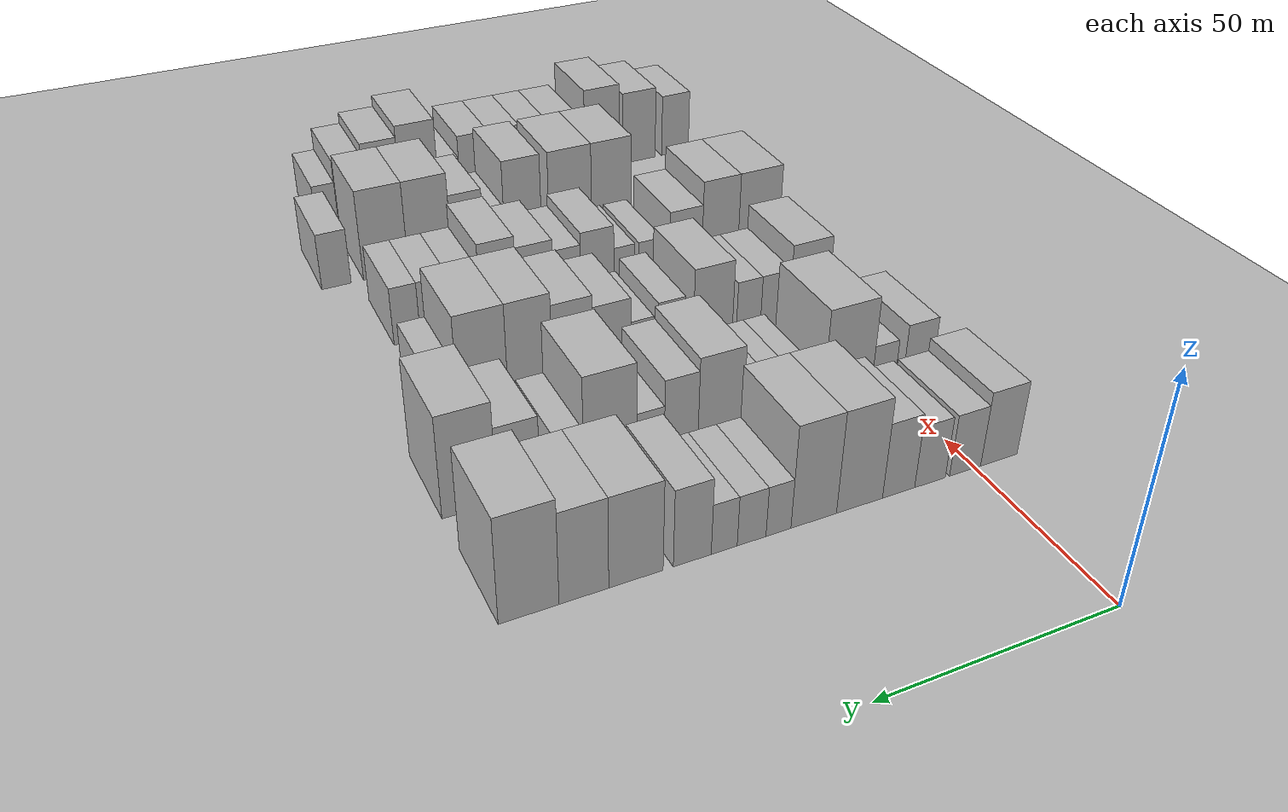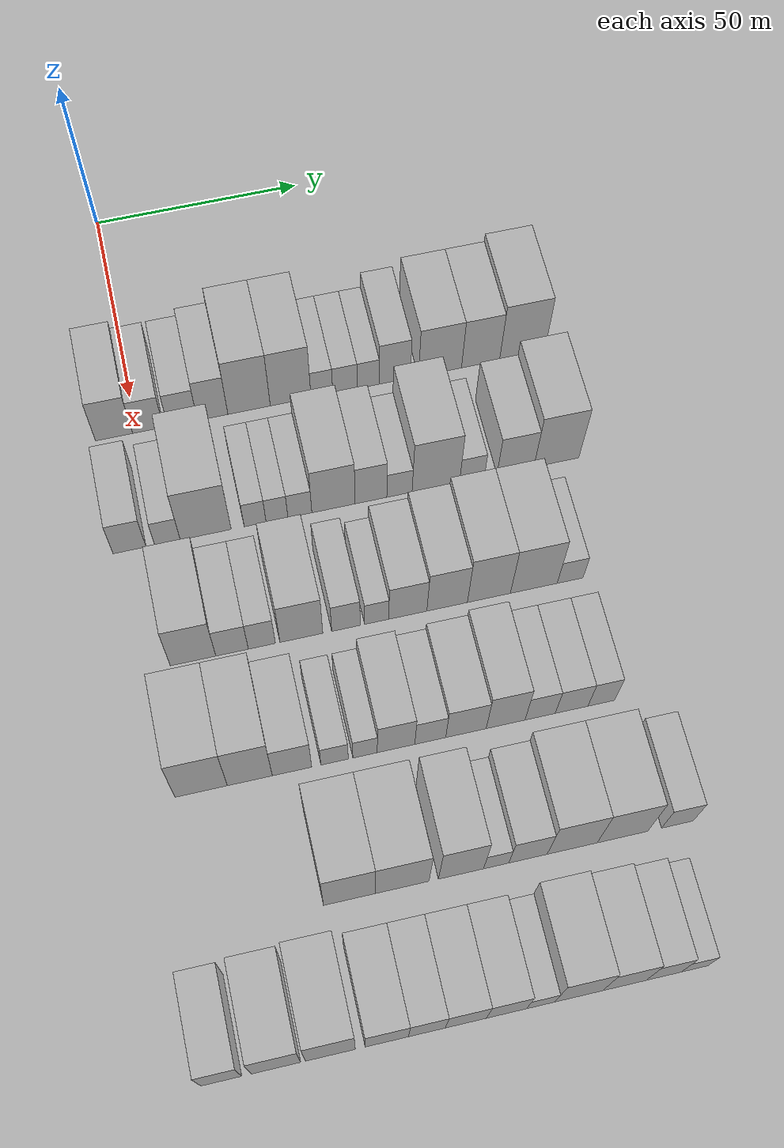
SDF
<sdf version="1.6">
 <world name="default">
  <include><name>ground_plane_1</name><uri>model://HANNAS_ground_plane</uri></include>
  <include>
   <name>ground_plane_2</name>
   <uri>model://HANNAS_ground_plane</uri>
   <pose>100 0 0  0 0 0</pose>
  </include>
  <model name="building_58">
   <static>1</static>
   <pose>50.0000 -5.2370 0 0.000000 0.000000 0.000000</pose>
   <link name="link">
    <pose>0 0 9.00 0 0 0</pose>
    <collision name="collision"><geometry><box><size>20.0000 8.7269 18.0000</size></box></geometry></collision>
    <visual name="visual">
     <cast_shadows>0</cast_shadows>
     <geometry><box><size>20.0000 8.7269 18.0000</size></box></geometry>
     <material>
      <script>
       <uri>model://HANNAS_wall/materials/scripts</uri>
       <uri>model://HANNAS_wall/materials/textures</uri>
       <name>vrc/HANNAS_wall</name>
      </script>
     </material>
    </visual>
   </link>
  </model>
  <model name="building_59">
   <static>1</static>
   <pose>50.0000 2.7610 0 0.000000 0.000000 0.000000</pose>
   <link name="link">
    <pose>0 0 7.50 0 0 0</pose>
    <collision name="collision"><geometry><box><size>20.0000 7.2690 15.0000</size></box></geometry></collision>
    <visual name="visual">
     <cast_shadows>0</cast_shadows>
     <geometry><box><size>20.0000 7.2690 15.0000</size></box></geometry>
     <material>
      <script>
       <uri>model://HANNAS_wall/materials/scripts</uri>
       <uri>model://HANNAS_wall/materials/textures</uri>
       <name>vrc/HANNAS_wall</name>
      </script>
     </material>
    </visual>
   </link>
  </model>
  <model name="building_60">
   <static>1</static>
   <pose>50.0000 10.9094 0 0.000000 0.000000 0.000000</pose>
   <link name="link">
    <pose>0 0 7.50 0 0 0</pose>
    <collision name="collision"><geometry><box><size>20.0000 7.0279 15.0000</size></box></geometry></collision>
    <visual name="visual">
     <cast_shadows>0</cast_shadows>
     <geometry><box><size>20.0000 7.0279 15.0000</size></box></geometry>
     <material>
      <script>
       <uri>model://HANNAS_wall/materials/scripts</uri>
       <uri>model://HANNAS_wall/materials/textures</uri>
       <name>vrc/HANNAS_wall</name>
      </script>
     </material>
    </visual>
   </link>
  </model>
  <model name="building_61">
   <static>1</static>
   <pose>50.0000 18.0346 0 0.000000 0.000000 0.000000</pose>
   <link name="link">
    <pose>0 0 9.00 0 0 0</pose>
    <collision name="collision"><geometry><box><size>20.0000 7.2224 18.0000</size></box></geometry></collision>
    <visual name="visual">
     <cast_shadows>0</cast_shadows>
     <geometry><box><size>20.0000 7.2224 18.0000</size></box></geometry>
     <material>
      <script>
       <uri>model://HANNAS_wall/materials/scripts</uri>
       <uri>model://HANNAS_wall/materials/textures</uri>
       <name>vrc/HANNAS_wall</name>
      </script>
     </material>
    </visual>
   </link>
  </model>
  <model name="building_62">
   <static>1</static>
   <pose>50.0000 26.6964 0 0.000000 0.000000 0.000000</pose>
   <link name="link">
    <pose>0 0 12.00 0 0 0</pose>
    <collision name="collision"><geometry><box><size>20.0000 10.1013 24.0000</size></box></geometry></collision>
    <visual name="visual">
     <cast_shadows>0</cast_shadows>
     <geometry><box><size>20.0000 10.1013 24.0000</size></box></geometry>
     <material>
      <script>
       <uri>model://HANNAS_wall/materials/scripts</uri>
       <uri>model://HANNAS_wall/materials/textures</uri>
       <name>vrc/HANNAS_wall</name>
      </script>
     </material>
    </visual>
   </link>
  </model>
  <model name="building_63">
   <static>1</static>
   <pose>50.0000 36.6137 0 0.000000 0.000000 0.000000</pose>
   <link name="link">
    <pose>0 0 12.00 0 0 0</pose>
    <collision name="collision"><geometry><box><size>20.0000 9.7333 24.0000</size></box></geometry></collision>
    <visual name="visual">
     <cast_shadows>0</cast_shadows>
     <geometry><box><size>20.0000 9.7333 24.0000</size></box></geometry>
     <material>
      <script>
       <uri>model://HANNAS_wall/materials/scripts</uri>
       <uri>model://HANNAS_wall/materials/textures</uri>
       <name>vrc/HANNAS_wall</name>
      </script>
     </material>
    </visual>
   </link>
  </model>
  <model name="building_64">
   <static>1</static>
   <pose>50.0000 44.0931 0 0.000000 0.000000 0.000000</pose>
   <link name="link">
    <pose>0 0 6.00 0 0 0</pose>
    <collision name="collision"><geometry><box><size>20.0000 5.2255 12.0000</size></box></geometry></collision>
    <visual name="visual">
     <cast_shadows>0</cast_shadows>
     <geometry><box><size>20.0000 5.2255 12.0000</size></box></geometry>
     <material>
      <script>
       <uri>model://HANNAS_wall/materials/scripts</uri>
       <uri>model://HANNAS_wall/materials/textures</uri>
       <name>vrc/HANNAS_wall</name>
      </script>
     </material>
    </visual>
   </link>
  </model>
  <model name="building_65">
   <static>1</static>
   <pose>50.0000 49.6679 0 0.000000 0.000000 0.000000</pose>
   <link name="link">
    <pose>0 0 6.00 0 0 0</pose>
    <collision name="collision"><geometry><box><size>20.0000 5.9241 12.0000</size></box></geometry></collision>
    <visual name="visual">
     <cast_shadows>0</cast_shadows>
     <geometry><box><size>20.0000 5.9241 12.0000</size></box></geometry>
     <material>
      <script>
       <uri>model://HANNAS_wall/materials/scripts</uri>
       <uri>model://HANNAS_wall/materials/textures</uri>
       <name>vrc/HANNAS_wall</name>
      </script>
     </material>
    </visual>
   </link>
  </model>
  <model name="building_66">
   <static>1</static>
   <pose>50.0000 55.2623 0 0.000000 0.000000 0.000000</pose>
   <link name="link">
    <pose>0 0 6.00 0 0 0</pose>
    <collision name="collision"><geometry><box><size>20.0000 5.2646 12.0000</size></box></geometry></collision>
    <visual name="visual">
     <cast_shadows>0</cast_shadows>
     <geometry><box><size>20.0000 5.2646 12.0000</size></box></geometry>
     <material>
      <script>
       <uri>model://HANNAS_wall/materials/scripts</uri>
       <uri>model://HANNAS_wall/materials/textures</uri>
       <name>vrc/HANNAS_wall</name>
      </script>
     </material>
    </visual>
   </link>
  </model>
  <model name="building_67">
   <static>1</static>
   <pose>50.0000 61.6664 0 0.000000 0.000000 0.000000</pose>
   <link name="link">
    <pose>0 0 9.00 0 0 0</pose>
    <collision name="collision"><geometry><box><size>20.0000 7.5437 18.0000</size></box></geometry></collision>
    <visual name="visual">
     <cast_shadows>0</cast_shadows>
     <geometry><box><size>20.0000 7.5437 18.0000</size></box></geometry>
     <material>
      <script>
       <uri>model://HANNAS_wall/materials/scripts</uri>
       <uri>model://HANNAS_wall/materials/textures</uri>
       <name>vrc/HANNAS_wall</name>
      </script>
     </material>
    </visual>
   </link>
  </model>
  <model name="building_68">
   <static>1</static>
   <pose>50.0000 72.6750 0 0.000000 0.000000 0.000000</pose>
   <link name="link">
    <pose>0 0 10.50 0 0 0</pose>
    <collision name="collision"><geometry><box><size>20.0000 10.4735 21.0000</size></box></geometry></collision>
    <visual name="visual">
     <cast_shadows>0</cast_shadows>
     <geometry><box><size>20.0000 10.4735 21.0000</size></box></geometry>
     <material>
      <script>
       <uri>model://HANNAS_wall/materials/scripts</uri>
       <uri>model://HANNAS_wall/materials/textures</uri>
       <name>vrc/HANNAS_wall</name>
      </script>
     </material>
    </visual>
   </link>
  </model>
  <model name="building_69">
   <static>1</static>
   <pose>50.0000 82.5582 0 0.000000 0.000000 0.000000</pose>
   <link name="link">
    <pose>0 0 10.50 0 0 0</pose>
    <collision name="collision"><geometry><box><size>20.0000 9.2928 21.0000</size></box></geometry></collision>
    <visual name="visual">
     <cast_shadows>0</cast_shadows>
     <geometry><box><size>20.0000 9.2928 21.0000</size></box></geometry>
     <material>
      <script>
       <uri>model://HANNAS_wall/materials/scripts</uri>
       <uri>model://HANNAS_wall/materials/textures</uri>
       <name>vrc/HANNAS_wall</name>
      </script>
     </material>
    </visual>
   </link>
  </model>
  <model name="building_70">
   <static>1</static>
   <pose>50.0000 92.7431 0 0.000000 0.000000 0.000000</pose>
   <link name="link">
    <pose>0 0 12.00 0 0 0</pose>
    <collision name="collision"><geometry><box><size>20.0000 11.0769 24.0000</size></box></geometry></collision>
    <visual name="visual">
     <cast_shadows>0</cast_shadows>
     <geometry><box><size>20.0000 11.0769 24.0000</size></box></geometry>
     <material>
      <script>
       <uri>model://HANNAS_wall/materials/scripts</uri>
       <uri>model://HANNAS_wall/materials/textures</uri>
       <name>vrc/HANNAS_wall</name>
      </script>
     </material>
    </visual>
   </link>
  </model>
  <model name="building_176">
   <static>1</static>
   <pose>79.0000 -6.3627 0 0.000000 0.000000 0.000000</pose>
   <link name="link">
    <pose>0 0 7.50 0 0 0</pose>
    <collision name="collision"><geometry><box><size>20.0000 7.4978 15.0000</size></box></geometry></collision>
    <visual name="visual">
     <cast_shadows>0</cast_shadows>
     <geometry><box><size>20.0000 7.4978 15.0000</size></box></geometry>
     <material>
      <script>
       <uri>model://HANNAS_wall/materials/scripts</uri>
       <uri>model://HANNAS_wall/materials/textures</uri>
       <name>vrc/HANNAS_wall</name>
      </script>
     </material>
    </visual>
   </link>
  </model>
  <model name="building_177">
   <static>1</static>
   <pose>79.0000 2.2983 0 0.000000 0.000000 0.000000</pose>
   <link name="link">
    <pose>0 0 6.00 0 0 0</pose>
    <collision name="collision"><geometry><box><size>20.0000 5.8242 12.0000</size></box></geometry></collision>
    <visual name="visual">
     <cast_shadows>0</cast_shadows>
     <geometry><box><size>20.0000 5.8242 12.0000</size></box></geometry>
     <material>
      <script>
       <uri>model://HANNAS_wall/materials/scripts</uri>
       <uri>model://HANNAS_wall/materials/textures</uri>
       <name>vrc/HANNAS_wall</name>
      </script>
     </material>
    </visual>
   </link>
  </model>
  <model name="building_178">
   <static>1</static>
   <pose>79.0000 11.0589 0 0.000000 0.000000 0.000000</pose>
   <link name="link">
    <pose>0 0 12.00 0 0 0</pose>
    <collision name="collision"><geometry><box><size>20.0000 11.6969 24.0000</size></box></geometry></collision>
    <visual name="visual">
     <cast_shadows>0</cast_shadows>
     <geometry><box><size>20.0000 11.6969 24.0000</size></box></geometry>
     <material>
      <script>
       <uri>model://HANNAS_wall/materials/scripts</uri>
       <uri>model://HANNAS_wall/materials/textures</uri>
       <name>vrc/HANNAS_wall</name>
      </script>
     </material>
    </visual>
   </link>
  </model>
  <model name="building_179">
   <static>1</static>
   <pose>79.0000 22.4346 0 0.000000 0.000000 0.000000</pose>
   <link name="link">
    <pose>0 0 6.00 0 0 0</pose>
    <collision name="collision"><geometry><box><size>20.0000 5.0546 12.0000</size></box></geometry></collision>
    <visual name="visual">
     <cast_shadows>0</cast_shadows>
     <geometry><box><size>20.0000 5.0546 12.0000</size></box></geometry>
     <material>
      <script>
       <uri>model://HANNAS_wall/materials/scripts</uri>
       <uri>model://HANNAS_wall/materials/textures</uri>
       <name>vrc/HANNAS_wall</name>
      </script>
     </material>
    </visual>
   </link>
  </model>
  <model name="building_180">
   <static>1</static>
   <pose>79.0000 27.4824 0 0.000000 0.000000 0.000000</pose>
   <link name="link">
    <pose>0 0 6.00 0 0 0</pose>
    <collision name="collision"><geometry><box><size>20.0000 5.0411 12.0000</size></box></geometry></collision>
    <visual name="visual">
     <cast_shadows>0</cast_shadows>
     <geometry><box><size>20.0000 5.0411 12.0000</size></box></geometry>
     <material>
      <script>
       <uri>model://HANNAS_wall/materials/scripts</uri>
       <uri>model://HANNAS_wall/materials/textures</uri>
       <name>vrc/HANNAS_wall</name>
      </script>
     </material>
    </visual>
   </link>
  </model>
  <model name="building_181">
   <static>1</static>
   <pose>79.0000 32.7858 0 0.000000 0.000000 0.000000</pose>
   <link name="link">
    <pose>0 0 6.00 0 0 0</pose>
    <collision name="collision"><geometry><box><size>20.0000 5.5657 12.0000</size></box></geometry></collision>
    <visual name="visual">
     <cast_shadows>0</cast_shadows>
     <geometry><box><size>20.0000 5.5657 12.0000</size></box></geometry>
     <material>
      <script>
       <uri>model://HANNAS_wall/materials/scripts</uri>
       <uri>model://HANNAS_wall/materials/textures</uri>
       <name>vrc/HANNAS_wall</name>
      </script>
     </material>
    </visual>
   </link>
  </model>
  <model name="building_182">
   <static>1</static>
   <pose>79.0000 40.6042 0 0.000000 0.000000 0.000000</pose>
   <link name="link">
    <pose>0 0 10.50 0 0 0</pose>
    <collision name="collision"><geometry><box><size>20.0000 10.0710 21.0000</size></box></geometry></collision>
    <visual name="visual">
     <cast_shadows>0</cast_shadows>
     <geometry><box><size>20.0000 10.0710 21.0000</size></box></geometry>
     <material>
      <script>
       <uri>model://HANNAS_wall/materials/scripts</uri>
       <uri>model://HANNAS_wall/materials/textures</uri>
       <name>vrc/HANNAS_wall</name>
      </script>
     </material>
    </visual>
   </link>
  </model>
  <model name="building_183">
   <static>1</static>
   <pose>79.0000 49.3467 0 0.000000 0.000000 0.000000</pose>
   <link name="link">
    <pose>0 0 9.00 0 0 0</pose>
    <collision name="collision"><geometry><box><size>20.0000 7.4141 18.0000</size></box></geometry></collision>
    <visual name="visual">
     <cast_shadows>0</cast_shadows>
     <geometry><box><size>20.0000 7.4141 18.0000</size></box></geometry>
     <material>
      <script>
       <uri>model://HANNAS_wall/materials/scripts</uri>
       <uri>model://HANNAS_wall/materials/textures</uri>
       <name>vrc/HANNAS_wall</name>
      </script>
     </material>
    </visual>
   </link>
  </model>
  <model name="building_184">
   <static>1</static>
   <pose>79.0000 56.0207 0 0.000000 0.000000 0.000000</pose>
   <link name="link">
    <pose>0 0 6.00 0 0 0</pose>
    <collision name="collision"><geometry><box><size>20.0000 5.9337 12.0000</size></box></geometry></collision>
    <visual name="visual">
     <cast_shadows>0</cast_shadows>
     <geometry><box><size>20.0000 5.9337 12.0000</size></box></geometry>
     <material>
      <script>
       <uri>model://HANNAS_wall/materials/scripts</uri>
       <uri>model://HANNAS_wall/materials/textures</uri>
       <name>vrc/HANNAS_wall</name>
      </script>
     </material>
    </visual>
   </link>
  </model>
  <model name="building_185">
   <static>1</static>
   <pose>79.0000 64.5685 0 0.000000 0.000000 0.000000</pose>
   <link name="link">
    <pose>0 0 12.00 0 0 0</pose>
    <collision name="collision"><geometry><box><size>20.0000 11.1620 24.0000</size></box></geometry></collision>
    <visual name="visual">
     <cast_shadows>0</cast_shadows>
     <geometry><box><size>20.0000 11.1620 24.0000</size></box></geometry>
     <material>
      <script>
       <uri>model://HANNAS_wall/materials/scripts</uri>
       <uri>model://HANNAS_wall/materials/textures</uri>
       <name>vrc/HANNAS_wall</name>
      </script>
     </material>
    </visual>
   </link>
  </model>
  <model name="building_186">
   <static>1</static>
   <pose>79.0000 73.0908 0 0.000000 0.000000 0.000000</pose>
   <link name="link">
    <pose>0 0 6.00 0 0 0</pose>
    <collision name="collision"><geometry><box><size>20.0000 5.8826 12.0000</size></box></geometry></collision>
    <visual name="visual">
     <cast_shadows>0</cast_shadows>
     <geometry><box><size>20.0000 5.8826 12.0000</size></box></geometry>
     <material>
      <script>
       <uri>model://HANNAS_wall/materials/scripts</uri>
       <uri>model://HANNAS_wall/materials/textures</uri>
       <name>vrc/HANNAS_wall</name>
      </script>
     </material>
    </visual>
   </link>
  </model>
  <model name="building_187">
   <static>1</static>
   <pose>79.0000 83.4202 0 0.000000 0.000000 0.000000</pose>
   <link name="link">
    <pose>0 0 9.00 0 0 0</pose>
    <collision name="collision"><geometry><box><size>20.0000 8.7762 18.0000</size></box></geometry></collision>
    <visual name="visual">
     <cast_shadows>0</cast_shadows>
     <geometry><box><size>20.0000 8.7762 18.0000</size></box></geometry>
     <material>
      <script>
       <uri>model://HANNAS_wall/materials/scripts</uri>
       <uri>model://HANNAS_wall/materials/textures</uri>
       <name>vrc/HANNAS_wall</name>
      </script>
     </material>
    </visual>
   </link>
  </model>
  <model name="building_188">
   <static>1</static>
   <pose>79.0000 93.1809 0 0.000000 0.000000 0.000000</pose>
   <link name="link">
    <pose>0 0 12.00 0 0 0</pose>
    <collision name="collision"><geometry><box><size>20.0000 10.7453 24.0000</size></box></geometry></collision>
    <visual name="visual">
     <cast_shadows>0</cast_shadows>
     <geometry><box><size>20.0000 10.7453 24.0000</size></box></geometry>
     <material>
      <script>
       <uri>model://HANNAS_wall/materials/scripts</uri>
       <uri>model://HANNAS_wall/materials/textures</uri>
       <name>vrc/HANNAS_wall</name>
      </script>
     </material>
    </visual>
   </link>
  </model>
  <model name="building_293">
   <static>1</static>
   <pose>108.0000 2.9154 0 0.000000 0.000000 0.000000</pose>
   <link name="link">
    <pose>0 0 10.50 0 0 0</pose>
    <collision name="collision"><geometry><box><size>20.0000 10.0938 21.0000</size></box></geometry></collision>
    <visual name="visual">
     <cast_shadows>0</cast_shadows>
     <geometry><box><size>20.0000 10.0938 21.0000</size></box></geometry>
     <material>
      <script>
       <uri>model://HANNAS_wall/materials/scripts</uri>
       <uri>model://HANNAS_wall/materials/textures</uri>
       <name>vrc/HANNAS_wall</name>
      </script>
     </material>
    </visual>
   </link>
  </model>
  <model name="building_294">
   <static>1</static>
   <pose>108.0000 11.5925 0 0.000000 0.000000 0.000000</pose>
   <link name="link">
    <pose>0 0 7.50 0 0 0</pose>
    <collision name="collision"><geometry><box><size>20.0000 7.2604 15.0000</size></box></geometry></collision>
    <visual name="visual">
     <cast_shadows>0</cast_shadows>
     <geometry><box><size>20.0000 7.2604 15.0000</size></box></geometry>
     <material>
      <script>
       <uri>model://HANNAS_wall/materials/scripts</uri>
       <uri>model://HANNAS_wall/materials/textures</uri>
       <name>vrc/HANNAS_wall</name>
      </script>
     </material>
    </visual>
   </link>
  </model>
  <model name="building_295">
   <static>1</static>
   <pose>108.0000 18.2490 0 0.000000 0.000000 0.000000</pose>
   <link name="link">
    <pose>0 0 7.50 0 0 0</pose>
    <collision name="collision"><geometry><box><size>20.0000 6.0526 15.0000</size></box></geometry></collision>
    <visual name="visual">
     <cast_shadows>0</cast_shadows>
     <geometry><box><size>20.0000 6.0526 15.0000</size></box></geometry>
     <material>
      <script>
       <uri>model://HANNAS_wall/materials/scripts</uri>
       <uri>model://HANNAS_wall/materials/textures</uri>
       <name>vrc/HANNAS_wall</name>
      </script>
     </material>
    </visual>
   </link>
  </model>
  <model name="building_296">
   <static>1</static>
   <pose>108.0000 27.0882 0 0.000000 0.000000 0.000000</pose>
   <link name="link">
    <pose>0 0 10.50 0 0 0</pose>
    <collision name="collision"><geometry><box><size>20.0000 9.6259 21.0000</size></box></geometry></collision>
    <visual name="visual">
     <cast_shadows>0</cast_shadows>
     <geometry><box><size>20.0000 9.6259 21.0000</size></box></geometry>
     <material>
      <script>
       <uri>model://HANNAS_wall/materials/scripts</uri>
       <uri>model://HANNAS_wall/materials/textures</uri>
       <name>vrc/HANNAS_wall</name>
      </script>
     </material>
    </visual>
   </link>
  </model>
  <model name="building_297">
   <static>1</static>
   <pose>108.0000 37.1175 0 0.000000 0.000000 0.000000</pose>
   <link name="link">
    <pose>0 0 7.50 0 0 0</pose>
    <collision name="collision"><geometry><box><size>20.0000 6.4328 15.0000</size></box></geometry></collision>
    <visual name="visual">
     <cast_shadows>0</cast_shadows>
     <geometry><box><size>20.0000 6.4328 15.0000</size></box></geometry>
     <material>
      <script>
       <uri>model://HANNAS_wall/materials/scripts</uri>
       <uri>model://HANNAS_wall/materials/textures</uri>
       <name>vrc/HANNAS_wall</name>
      </script>
     </material>
    </visual>
   </link>
  </model>
  <model name="building_298">
   <static>1</static>
   <pose>108.0000 44.0546 0 0.000000 0.000000 0.000000</pose>
   <link name="link">
    <pose>0 0 6.00 0 0 0</pose>
    <collision name="collision"><geometry><box><size>20.0000 5.4414 12.0000</size></box></geometry></collision>
    <visual name="visual">
     <cast_shadows>0</cast_shadows>
     <geometry><box><size>20.0000 5.4414 12.0000</size></box></geometry>
     <material>
      <script>
       <uri>model://HANNAS_wall/materials/scripts</uri>
       <uri>model://HANNAS_wall/materials/textures</uri>
       <name>vrc/HANNAS_wall</name>
      </script>
     </material>
    </visual>
   </link>
  </model>
  <model name="building_299">
   <static>1</static>
   <pose>108.0000 51.1132 0 0.000000 0.000000 0.000000</pose>
   <link name="link">
    <pose>0 0 9.00 0 0 0</pose>
    <collision name="collision"><geometry><box><size>20.0000 8.6758 18.0000</size></box></geometry></collision>
    <visual name="visual">
     <cast_shadows>0</cast_shadows>
     <geometry><box><size>20.0000 8.6758 18.0000</size></box></geometry>
     <material>
      <script>
       <uri>model://HANNAS_wall/materials/scripts</uri>
       <uri>model://HANNAS_wall/materials/textures</uri>
       <name>vrc/HANNAS_wall</name>
      </script>
     </material>
    </visual>
   </link>
  </model>
  <model name="building_300">
   <static>1</static>
   <pose>108.0000 60.0744 0 0.000000 0.000000 0.000000</pose>
   <link name="link">
    <pose>0 0 10.50 0 0 0</pose>
    <collision name="collision"><geometry><box><size>20.0000 9.2464 21.0000</size></box></geometry></collision>
    <visual name="visual">
     <cast_shadows>0</cast_shadows>
     <geometry><box><size>20.0000 9.2464 21.0000</size></box></geometry>
     <material>
      <script>
       <uri>model://HANNAS_wall/materials/scripts</uri>
       <uri>model://HANNAS_wall/materials/textures</uri>
       <name>vrc/HANNAS_wall</name>
      </script>
     </material>
    </visual>
   </link>
  </model>
  <model name="building_301">
   <static>1</static>
   <pose>108.0000 69.6372 0 0.000000 0.000000 0.000000</pose>
   <link name="link">
    <pose>0 0 12.00 0 0 0</pose>
    <collision name="collision"><geometry><box><size>20.0000 9.8793 24.0000</size></box></geometry></collision>
    <visual name="visual">
     <cast_shadows>0</cast_shadows>
     <geometry><box><size>20.0000 9.8793 24.0000</size></box></geometry>
     <material>
      <script>
       <uri>model://HANNAS_wall/materials/scripts</uri>
       <uri>model://HANNAS_wall/materials/textures</uri>
       <name>vrc/HANNAS_wall</name>
      </script>
     </material>
    </visual>
   </link>
  </model>
  <model name="building_302">
   <static>1</static>
   <pose>108.0000 79.9769 0 0.000000 0.000000 0.000000</pose>
   <link name="link">
    <pose>0 0 12.00 0 0 0</pose>
    <collision name="collision"><geometry><box><size>20.0000 10.8000 24.0000</size></box></geometry></collision>
    <visual name="visual">
     <cast_shadows>0</cast_shadows>
     <geometry><box><size>20.0000 10.8000 24.0000</size></box></geometry>
     <material>
      <script>
       <uri>model://HANNAS_wall/materials/scripts</uri>
       <uri>model://HANNAS_wall/materials/textures</uri>
       <name>vrc/HANNAS_wall</name>
      </script>
     </material>
    </visual>
   </link>
  </model>
  <model name="building_303">
   <static>1</static>
   <pose>108.0000 88.3664 0 0.000000 0.000000 0.000000</pose>
   <link name="link">
    <pose>0 0 6.00 0 0 0</pose>
    <collision name="collision"><geometry><box><size>20.0000 5.9791 12.0000</size></box></geometry></collision>
    <visual name="visual">
     <cast_shadows>0</cast_shadows>
     <geometry><box><size>20.0000 5.9791 12.0000</size></box></geometry>
     <material>
      <script>
       <uri>model://HANNAS_wall/materials/scripts</uri>
       <uri>model://HANNAS_wall/materials/textures</uri>
       <name>vrc/HANNAS_wall</name>
      </script>
     </material>
    </visual>
   </link>
  </model>
  <model name="building_408">
   <static>1</static>
   <pose>137.0000 -0.5355 0 0.000000 0.000000 0.000000</pose>
   <link name="link">
    <pose>0 0 12.00 0 0 0</pose>
    <collision name="collision"><geometry><box><size>20.0000 11.2154 24.0000</size></box></geometry></collision>
    <visual name="visual">
     <cast_shadows>0</cast_shadows>
     <geometry><box><size>20.0000 11.2154 24.0000</size></box></geometry>
     <material>
      <script>
       <uri>model://HANNAS_wall/materials/scripts</uri>
       <uri>model://HANNAS_wall/materials/textures</uri>
       <name>vrc/HANNAS_wall</name>
      </script>
     </material>
    </visual>
   </link>
  </model>
  <model name="building_409">
   <static>1</static>
   <pose>137.0000 9.9177 0 0.000000 0.000000 0.000000</pose>
   <link name="link">
    <pose>0 0 12.00 0 0 0</pose>
    <collision name="collision"><geometry><box><size>20.0000 9.6911 24.0000</size></box></geometry></collision>
    <visual name="visual">
     <cast_shadows>0</cast_shadows>
     <geometry><box><size>20.0000 9.6911 24.0000</size></box></geometry>
     <material>
      <script>
       <uri>model://HANNAS_wall/materials/scripts</uri>
       <uri>model://HANNAS_wall/materials/textures</uri>
       <name>vrc/HANNAS_wall</name>
      </script>
     </material>
    </visual>
   </link>
  </model>
  <model name="building_410">
   <static>1</static>
   <pose>137.0000 19.0268 0 0.000000 0.000000 0.000000</pose>
   <link name="link">
    <pose>0 0 9.00 0 0 0</pose>
    <collision name="collision"><geometry><box><size>20.0000 8.5270 18.0000</size></box></geometry></collision>
    <visual name="visual">
     <cast_shadows>0</cast_shadows>
     <geometry><box><size>20.0000 8.5270 18.0000</size></box></geometry>
     <material>
      <script>
       <uri>model://HANNAS_wall/materials/scripts</uri>
       <uri>model://HANNAS_wall/materials/textures</uri>
       <name>vrc/HANNAS_wall</name>
      </script>
     </material>
    </visual>
   </link>
  </model>
  <model name="building_411">
   <static>1</static>
   <pose>137.0000 28.2692 0 0.000000 0.000000 0.000000</pose>
   <link name="link">
    <pose>0 0 6.00 0 0 0</pose>
    <collision name="collision"><geometry><box><size>20.0000 5.9578 12.0000</size></box></geometry></collision>
    <visual name="visual">
     <cast_shadows>0</cast_shadows>
     <geometry><box><size>20.0000 5.9578 12.0000</size></box></geometry>
     <material>
      <script>
       <uri>model://HANNAS_wall/materials/scripts</uri>
       <uri>model://HANNAS_wall/materials/textures</uri>
       <name>vrc/HANNAS_wall</name>
      </script>
     </material>
    </visual>
   </link>
  </model>
  <model name="building_412">
   <static>1</static>
   <pose>137.0000 34.9049 0 0.000000 0.000000 0.000000</pose>
   <link name="link">
    <pose>0 0 6.00 0 0 0</pose>
    <collision name="collision"><geometry><box><size>20.0000 5.3135 12.0000</size></box></geometry></collision>
    <visual name="visual">
     <cast_shadows>0</cast_shadows>
     <geometry><box><size>20.0000 5.3135 12.0000</size></box></geometry>
     <material>
      <script>
       <uri>model://HANNAS_wall/materials/scripts</uri>
       <uri>model://HANNAS_wall/materials/textures</uri>
       <name>vrc/HANNAS_wall</name>
      </script>
     </material>
    </visual>
   </link>
  </model>
  <model name="building_413">
   <static>1</static>
   <pose>137.0000 41.6813 0 0.000000 0.000000 0.000000</pose>
   <link name="link">
    <pose>0 0 9.00 0 0 0</pose>
    <collision name="collision"><geometry><box><size>20.0000 8.2393 18.0000</size></box></geometry></collision>
    <visual name="visual">
     <cast_shadows>0</cast_shadows>
     <geometry><box><size>20.0000 8.2393 18.0000</size></box></geometry>
     <material>
      <script>
       <uri>model://HANNAS_wall/materials/scripts</uri>
       <uri>model://HANNAS_wall/materials/textures</uri>
       <name>vrc/HANNAS_wall</name>
      </script>
     </material>
    </visual>
   </link>
  </model>
  <model name="building_414">
   <static>1</static>
   <pose>137.0000 49.1995 0 0.000000 0.000000 0.000000</pose>
   <link name="link">
    <pose>0 0 7.50 0 0 0</pose>
    <collision name="collision"><geometry><box><size>20.0000 6.7970 15.0000</size></box></geometry></collision>
    <visual name="visual">
     <cast_shadows>0</cast_shadows>
     <geometry><box><size>20.0000 6.7970 15.0000</size></box></geometry>
     <material>
      <script>
       <uri>model://HANNAS_wall/materials/scripts</uri>
       <uri>model://HANNAS_wall/materials/textures</uri>
       <name>vrc/HANNAS_wall</name>
      </script>
     </material>
    </visual>
   </link>
  </model>
  <model name="building_415">
   <static>1</static>
   <pose>137.0000 57.0575 0 0.000000 0.000000 0.000000</pose>
   <link name="link">
    <pose>0 0 9.00 0 0 0</pose>
    <collision name="collision"><geometry><box><size>20.0000 8.9189 18.0000</size></box></geometry></collision>
    <visual name="visual">
     <cast_shadows>0</cast_shadows>
     <geometry><box><size>20.0000 8.9189 18.0000</size></box></geometry>
     <material>
      <script>
       <uri>model://HANNAS_wall/materials/scripts</uri>
       <uri>model://HANNAS_wall/materials/textures</uri>
       <name>vrc/HANNAS_wall</name>
      </script>
     </material>
    </visual>
   </link>
  </model>
  <model name="building_416">
   <static>1</static>
   <pose>137.0000 65.8321 0 0.000000 0.000000 0.000000</pose>
   <link name="link">
    <pose>0 0 10.50 0 0 0</pose>
    <collision name="collision"><geometry><box><size>20.0000 8.6302 21.0000</size></box></geometry></collision>
    <visual name="visual">
     <cast_shadows>0</cast_shadows>
     <geometry><box><size>20.0000 8.6302 21.0000</size></box></geometry>
     <material>
      <script>
       <uri>model://HANNAS_wall/materials/scripts</uri>
       <uri>model://HANNAS_wall/materials/textures</uri>
       <name>vrc/HANNAS_wall</name>
      </script>
     </material>
    </visual>
   </link>
  </model>
  <model name="building_417">
   <static>1</static>
   <pose>137.0000 73.5296 0 0.000000 0.000000 0.000000</pose>
   <link name="link">
    <pose>0 0 7.50 0 0 0</pose>
    <collision name="collision"><geometry><box><size>20.0000 6.7648 15.0000</size></box></geometry></collision>
    <visual name="visual">
     <cast_shadows>0</cast_shadows>
     <geometry><box><size>20.0000 6.7648 15.0000</size></box></geometry>
     <material>
      <script>
       <uri>model://HANNAS_wall/materials/scripts</uri>
       <uri>model://HANNAS_wall/materials/textures</uri>
       <name>vrc/HANNAS_wall</name>
      </script>
     </material>
    </visual>
   </link>
  </model>
  <model name="building_418">
   <static>1</static>
   <pose>137.0000 80.5659 0 0.000000 0.000000 0.000000</pose>
   <link name="link">
    <pose>0 0 7.50 0 0 0</pose>
    <collision name="collision"><geometry><box><size>20.0000 7.3079 15.0000</size></box></geometry></collision>
    <visual name="visual">
     <cast_shadows>0</cast_shadows>
     <geometry><box><size>20.0000 7.3079 15.0000</size></box></geometry>
     <material>
      <script>
       <uri>model://HANNAS_wall/materials/scripts</uri>
       <uri>model://HANNAS_wall/materials/textures</uri>
       <name>vrc/HANNAS_wall</name>
      </script>
     </material>
    </visual>
   </link>
  </model>
  <model name="building_419">
   <static>1</static>
   <pose>137.0000 87.2375 0 0.000000 0.000000 0.000000</pose>
   <link name="link">
    <pose>0 0 7.50 0 0 0</pose>
    <collision name="collision"><geometry><box><size>20.0000 6.0353 15.0000</size></box></geometry></collision>
    <visual name="visual">
     <cast_shadows>0</cast_shadows>
     <geometry><box><size>20.0000 6.0353 15.0000</size></box></geometry>
     <material>
      <script>
       <uri>model://HANNAS_wall/materials/scripts</uri>
       <uri>model://HANNAS_wall/materials/textures</uri>
       <name>vrc/HANNAS_wall</name>
      </script>
     </material>
    </visual>
   </link>
  </model>
  <model name="building_523">
   <static>1</static>
   <pose>166.0000 25.0873 0 0.000000 0.000000 0.000000</pose>
   <link name="link">
    <pose>0 0 12.00 0 0 0</pose>
    <collision name="collision"><geometry><box><size>20.0000 10.9031 24.0000</size></box></geometry></collision>
    <visual name="visual">
     <cast_shadows>0</cast_shadows>
     <geometry><box><size>20.0000 10.9031 24.0000</size></box></geometry>
     <material>
      <script>
       <uri>model://HANNAS_wall/materials/scripts</uri>
       <uri>model://HANNAS_wall/materials/textures</uri>
       <name>vrc/HANNAS_wall</name>
      </script>
     </material>
    </visual>
   </link>
  </model>
  <model name="building_524">
   <static>1</static>
   <pose>166.0000 36.2220 0 0.000000 0.000000 0.000000</pose>
   <link name="link">
    <pose>0 0 12.00 0 0 0</pose>
    <collision name="collision"><geometry><box><size>20.0000 11.3662 24.0000</size></box></geometry></collision>
    <visual name="visual">
     <cast_shadows>0</cast_shadows>
     <geometry><box><size>20.0000 11.3662 24.0000</size></box></geometry>
     <material>
      <script>
       <uri>model://HANNAS_wall/materials/scripts</uri>
       <uri>model://HANNAS_wall/materials/textures</uri>
       <name>vrc/HANNAS_wall</name>
      </script>
     </material>
    </visual>
   </link>
  </model>
  <model name="building_525">
   <static>1</static>
   <pose>166.0000 48.7159 0 0.000000 0.000000 0.000000</pose>
   <link name="link">
    <pose>0 0 12.00 0 0 0</pose>
    <collision name="collision"><geometry><box><size>20.0000 9.6216 24.0000</size></box></geometry></collision>
    <visual name="visual">
     <cast_shadows>0</cast_shadows>
     <geometry><box><size>20.0000 9.6216 24.0000</size></box></geometry>
     <material>
      <script>
       <uri>model://HANNAS_wall/materials/scripts</uri>
       <uri>model://HANNAS_wall/materials/textures</uri>
       <name>vrc/HANNAS_wall</name>
      </script>
     </material>
    </visual>
   </link>
  </model>
  <model name="building_526">
   <static>1</static>
   <pose>166.0000 56.2250 0 0.000000 0.000000 0.000000</pose>
   <link name="link">
    <pose>0 0 6.00 0 0 0</pose>
    <collision name="collision"><geometry><box><size>20.0000 5.3967 12.0000</size></box></geometry></collision>
    <visual name="visual">
     <cast_shadows>0</cast_shadows>
     <geometry><box><size>20.0000 5.3967 12.0000</size></box></geometry>
     <material>
      <script>
       <uri>model://HANNAS_wall/materials/scripts</uri>
       <uri>model://HANNAS_wall/materials/textures</uri>
       <name>vrc/HANNAS_wall</name>
      </script>
     </material>
    </visual>
   </link>
  </model>
  <model name="building_527">
   <static>1</static>
   <pose>166.0000 63.0494 0 0.000000 0.000000 0.000000</pose>
   <link name="link">
    <pose>0 0 9.00 0 0 0</pose>
    <collision name="collision"><geometry><box><size>20.0000 8.2521 18.0000</size></box></geometry></collision>
    <visual name="visual">
     <cast_shadows>0</cast_shadows>
     <geometry><box><size>20.0000 8.2521 18.0000</size></box></geometry>
     <material>
      <script>
       <uri>model://HANNAS_wall/materials/scripts</uri>
       <uri>model://HANNAS_wall/materials/textures</uri>
       <name>vrc/HANNAS_wall</name>
      </script>
     </material>
    </visual>
   </link>
  </model>
  <model name="building_528">
   <static>1</static>
   <pose>166.0000 72.5929 0 0.000000 0.000000 0.000000</pose>
   <link name="link">
    <pose>0 0 12.00 0 0 0</pose>
    <collision name="collision"><geometry><box><size>20.0000 10.8349 24.0000</size></box></geometry></collision>
    <visual name="visual">
     <cast_shadows>0</cast_shadows>
     <geometry><box><size>20.0000 10.8349 24.0000</size></box></geometry>
     <material>
      <script>
       <uri>model://HANNAS_wall/materials/scripts</uri>
       <uri>model://HANNAS_wall/materials/textures</uri>
       <name>vrc/HANNAS_wall</name>
      </script>
     </material>
    </visual>
   </link>
  </model>
  <model name="building_529">
   <static>1</static>
   <pose>166.0000 83.4962 0 0.000000 0.000000 0.000000</pose>
   <link name="link">
    <pose>0 0 12.00 0 0 0</pose>
    <collision name="collision"><geometry><box><size>20.0000 10.9718 24.0000</size></box></geometry></collision>
    <visual name="visual">
     <cast_shadows>0</cast_shadows>
     <geometry><box><size>20.0000 10.9718 24.0000</size></box></geometry>
     <material>
      <script>
       <uri>model://HANNAS_wall/materials/scripts</uri>
       <uri>model://HANNAS_wall/materials/textures</uri>
       <name>vrc/HANNAS_wall</name>
      </script>
     </material>
    </visual>
   </link>
  </model>
  <model name="building_530">
   <static>1</static>
   <pose>166.0000 95.4577 0 0.000000 0.000000 0.000000</pose>
   <link name="link">
    <pose>0 0 7.50 0 0 0</pose>
    <collision name="collision"><geometry><box><size>20.0000 6.9513 15.0000</size></box></geometry></collision>
    <visual name="visual">
     <cast_shadows>0</cast_shadows>
     <geometry><box><size>20.0000 6.9513 15.0000</size></box></geometry>
     <material>
      <script>
       <uri>model://HANNAS_wall/materials/scripts</uri>
       <uri>model://HANNAS_wall/materials/textures</uri>
       <name>vrc/HANNAS_wall</name>
      </script>
     </material>
    </visual>
   </link>
  </model>
  <model name="building_637">
   <static>1</static>
   <pose>195.0000 -7.1275 0 0.000000 0.000000 0.000000</pose>
   <link name="link">
    <pose>0 0 9.00 0 0 0</pose>
    <collision name="collision"><geometry><box><size>20.0000 8.1719 18.0000</size></box></geometry></collision>
    <visual name="visual">
     <cast_shadows>0</cast_shadows>
     <geometry><box><size>20.0000 8.1719 18.0000</size></box></geometry>
     <material>
      <script>
       <uri>model://HANNAS_wall/materials/scripts</uri>
       <uri>model://HANNAS_wall/materials/textures</uri>
       <name>vrc/HANNAS_wall</name>
      </script>
     </material>
    </visual>
   </link>
  </model>
  <model name="building_638">
   <static>1</static>
   <pose>195.0000 3.8910 0 0.000000 0.000000 0.000000</pose>
   <link name="link">
    <pose>0 0 10.50 0 0 0</pose>
    <collision name="collision"><geometry><box><size>20.0000 9.8652 21.0000</size></box></geometry></collision>
    <visual name="visual">
     <cast_shadows>0</cast_shadows>
     <geometry><box><size>20.0000 9.8652 21.0000</size></box></geometry>
     <material>
      <script>
       <uri>model://HANNAS_wall/materials/scripts</uri>
       <uri>model://HANNAS_wall/materials/textures</uri>
       <name>vrc/HANNAS_wall</name>
      </script>
     </material>
    </visual>
   </link>
  </model>
  <model name="building_639">
   <static>1</static>
   <pose>195.0000 14.8460 0 0.000000 0.000000 0.000000</pose>
   <link name="link">
    <pose>0 0 12.00 0 0 0</pose>
    <collision name="collision"><geometry><box><size>20.0000 10.0447 24.0000</size></box></geometry></collision>
    <visual name="visual">
     <cast_shadows>0</cast_shadows>
     <geometry><box><size>20.0000 10.0447 24.0000</size></box></geometry>
     <material>
      <script>
       <uri>model://HANNAS_wall/materials/scripts</uri>
       <uri>model://HANNAS_wall/materials/textures</uri>
       <name>vrc/HANNAS_wall</name>
      </script>
     </material>
    </visual>
   </link>
  </model>
  <model name="building_640">
   <static>1</static>
   <pose>195.0000 26.2764 0 0.000000 0.000000 0.000000</pose>
   <link name="link">
    <pose>0 0 9.00 0 0 0</pose>
    <collision name="collision"><geometry><box><size>20.0000 8.8162 18.0000</size></box></geometry></collision>
    <visual name="visual">
     <cast_shadows>0</cast_shadows>
     <geometry><box><size>20.0000 8.8162 18.0000</size></box></geometry>
     <material>
      <script>
       <uri>model://HANNAS_wall/materials/scripts</uri>
       <uri>model://HANNAS_wall/materials/textures</uri>
       <name>vrc/HANNAS_wall</name>
      </script>
     </material>
    </visual>
   </link>
  </model>
  <model name="building_641">
   <static>1</static>
   <pose>195.0000 34.4512 0 0.000000 0.000000 0.000000</pose>
   <link name="link">
    <pose>0 0 9.00 0 0 0</pose>
    <collision name="collision"><geometry><box><size>20.0000 7.5334 18.0000</size></box></geometry></collision>
    <visual name="visual">
     <cast_shadows>0</cast_shadows>
     <geometry><box><size>20.0000 7.5334 18.0000</size></box></geometry>
     <material>
      <script>
       <uri>model://HANNAS_wall/materials/scripts</uri>
       <uri>model://HANNAS_wall/materials/textures</uri>
       <name>vrc/HANNAS_wall</name>
      </script>
     </material>
    </visual>
   </link>
  </model>
  <model name="building_642">
   <static>1</static>
   <pose>195.0000 42.4496 0 0.000000 0.000000 0.000000</pose>
   <link name="link">
    <pose>0 0 9.00 0 0 0</pose>
    <collision name="collision"><geometry><box><size>20.0000 8.4633 18.0000</size></box></geometry></collision>
    <visual name="visual">
     <cast_shadows>0</cast_shadows>
     <geometry><box><size>20.0000 8.4633 18.0000</size></box></geometry>
     <material>
      <script>
       <uri>model://HANNAS_wall/materials/scripts</uri>
       <uri>model://HANNAS_wall/materials/textures</uri>
       <name>vrc/HANNAS_wall</name>
      </script>
     </material>
    </visual>
   </link>
  </model>
  <model name="building_643">
   <static>1</static>
   <pose>195.0000 50.8114 0 0.000000 0.000000 0.000000</pose>
   <link name="link">
    <pose>0 0 9.00 0 0 0</pose>
    <collision name="collision"><geometry><box><size>20.0000 8.2604 18.0000</size></box></geometry></collision>
    <visual name="visual">
     <cast_shadows>0</cast_shadows>
     <geometry><box><size>20.0000 8.2604 18.0000</size></box></geometry>
     <material>
      <script>
       <uri>model://HANNAS_wall/materials/scripts</uri>
       <uri>model://HANNAS_wall/materials/textures</uri>
       <name>vrc/HANNAS_wall</name>
      </script>
     </material>
    </visual>
   </link>
  </model>
  <model name="building_644">
   <static>1</static>
   <pose>195.0000 57.8366 0 0.000000 0.000000 0.000000</pose>
   <link name="link">
    <pose>0 0 6.00 0 0 0</pose>
    <collision name="collision"><geometry><box><size>20.0000 5.7901 12.0000</size></box></geometry></collision>
    <visual name="visual">
     <cast_shadows>0</cast_shadows>
     <geometry><box><size>20.0000 5.7901 12.0000</size></box></geometry>
     <material>
      <script>
       <uri>model://HANNAS_wall/materials/scripts</uri>
       <uri>model://HANNAS_wall/materials/textures</uri>
       <name>vrc/HANNAS_wall</name>
      </script>
     </material>
    </visual>
   </link>
  </model>
  <model name="building_645">
   <static>1</static>
   <pose>195.0000 65.7801 0 0.000000 0.000000 0.000000</pose>
   <link name="link">
    <pose>0 0 12.00 0 0 0</pose>
    <collision name="collision"><geometry><box><size>20.0000 10.0967 24.0000</size></box></geometry></collision>
    <visual name="visual">
     <cast_shadows>0</cast_shadows>
     <geometry><box><size>20.0000 10.0967 24.0000</size></box></geometry>
     <material>
      <script>
       <uri>model://HANNAS_wall/materials/scripts</uri>
       <uri>model://HANNAS_wall/materials/textures</uri>
       <name>vrc/HANNAS_wall</name>
      </script>
     </material>
    </visual>
   </link>
  </model>
  <model name="building_646">
   <static>1</static>
   <pose>195.0000 75.3800 0 0.000000 0.000000 0.000000</pose>
   <link name="link">
    <pose>0 0 10.50 0 0 0</pose>
    <collision name="collision"><geometry><box><size>20.0000 9.1032 21.0000</size></box></geometry></collision>
    <visual name="visual">
     <cast_shadows>0</cast_shadows>
     <geometry><box><size>20.0000 9.1032 21.0000</size></box></geometry>
     <material>
      <script>
       <uri>model://HANNAS_wall/materials/scripts</uri>
       <uri>model://HANNAS_wall/materials/textures</uri>
       <name>vrc/HANNAS_wall</name>
      </script>
     </material>
    </visual>
   </link>
  </model>
  <model name="building_647">
   <static>1</static>
   <pose>195.0000 83.6320 0 0.000000 0.000000 0.000000</pose>
   <link name="link">
    <pose>0 0 9.00 0 0 0</pose>
    <collision name="collision"><geometry><box><size>20.0000 7.4009 18.0000</size></box></geometry></collision>
    <visual name="visual">
     <cast_shadows>0</cast_shadows>
     <geometry><box><size>20.0000 7.4009 18.0000</size></box></geometry>
     <material>
      <script>
       <uri>model://HANNAS_wall/materials/scripts</uri>
       <uri>model://HANNAS_wall/materials/textures</uri>
       <name>vrc/HANNAS_wall</name>
      </script>
     </material>
    </visual>
   </link>
  </model>
  <model name="building_648">
   <static>1</static>
   <pose>195.0000 90.1632 0 0.000000 0.000000 0.000000</pose>
   <link name="link">
    <pose>0 0 6.00 0 0 0</pose>
    <collision name="collision"><geometry><box><size>20.0000 5.6615 12.0000</size></box></geometry></collision>
    <visual name="visual">
     <cast_shadows>0</cast_shadows>
     <geometry><box><size>20.0000 5.6615 12.0000</size></box></geometry>
     <material>
      <script>
       <uri>model://HANNAS_wall/materials/scripts</uri>
       <uri>model://HANNAS_wall/materials/textures</uri>
       <name>vrc/HANNAS_wall</name>
      </script>
     </material>
    </visual>
   </link>
  </model>
 </world>
</sdf>
